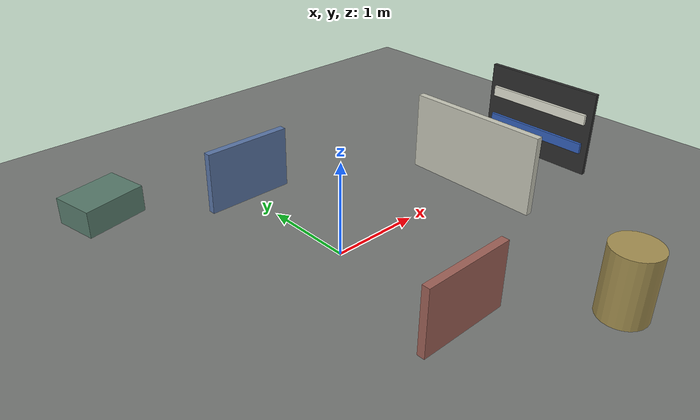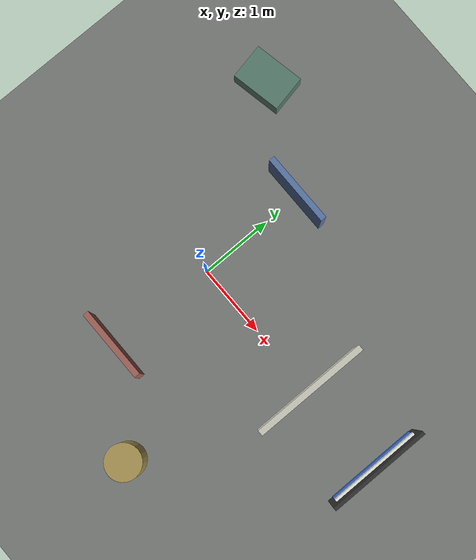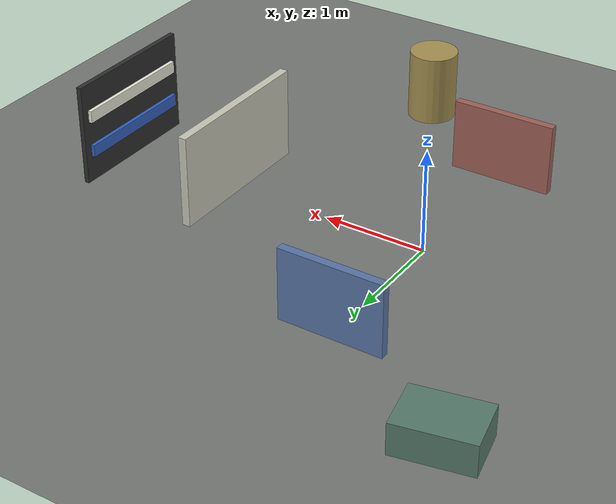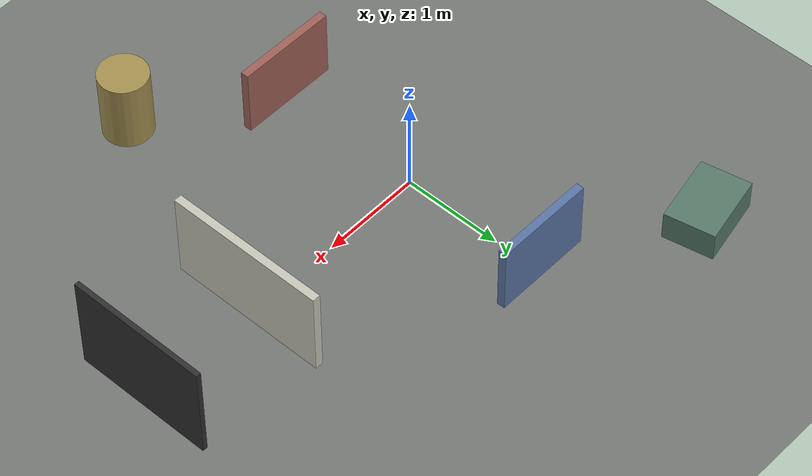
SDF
<?xml version="1.0"?>
<sdf version="1.9">
  <world name="brover_e5_sensor_test_world">
    <plugin filename="gz-sim-physics-system" name="gz::sim::systems::Physics"/>
    <plugin filename="gz-sim-user-commands-system" name="gz::sim::systems::UserCommands"/>
    <plugin filename="gz-sim-scene-broadcaster-system" name="gz::sim::systems::SceneBroadcaster"/>
    <plugin filename="gz-sim-sensors-system" name="gz::sim::systems::Sensors">
      <render_engine>ogre2</render_engine>
    </plugin>

    <gravity>0 0 -9.81</gravity>
    <atmosphere type="adiabatic"/>
    <scene>
      <ambient>0.35 0.35 0.35 1</ambient>
      <background>0.68 0.71 0.74 1</background>
      <shadows>true</shadows>
    </scene>

    <light name="sun" type="directional">
      <cast_shadows>true</cast_shadows>
      <pose>0 0 10 0 0 0</pose>
      <diffuse>0.95 0.95 0.90 1</diffuse>
      <specular>0.10 0.10 0.10 1</specular>
      <direction>-0.45 0.20 -0.86</direction>
    </light>

    <model name="ground_plane">
      <static>true</static>
      <link name="link">
        <collision name="collision">
          <geometry>
            <plane>
              <normal>0 0 1</normal>
              <size>10 8</size>
            </plane>
          </geometry>
          <surface>
            <friction>
              <ode>
                <mu>1.0</mu>
                <mu2>1.0</mu2>
              </ode>
            </friction>
          </surface>
        </collision>
        <visual name="visual">
          <geometry>
            <plane>
              <normal>0 0 1</normal>
              <size>10 8</size>
            </plane>
          </geometry>
          <material>
            <ambient>0.46 0.47 0.46 1</ambient>
            <diffuse>0.46 0.47 0.46 1</diffuse>
            <specular>0.02 0.02 0.02 1</specular>
          </material>
        </visual>
      </link>
    </model>

    <model name="front_range_panel_2m">
      <static>true</static>
      <pose>2.0 0 0.45 0 0 0</pose>
      <link name="link">
        <collision name="collision"><geometry><box><size>0.08 1.6 0.9</size></box></geometry></collision>
        <visual name="visual">
          <geometry><box><size>0.08 1.6 0.9</size></box></geometry>
          <material><diffuse>0.78 0.78 0.72 1</diffuse></material>
        </visual>
      </link>
    </model>

    <model name="left_range_panel">
      <static>true</static>
      <pose>0 1.5 0.35 0 0 0</pose>
      <link name="link">
        <collision name="collision"><geometry><box><size>1.0 0.08 0.7</size></box></geometry></collision>
        <visual name="visual">
          <geometry><box><size>1.0 0.08 0.7</size></box></geometry>
          <material><diffuse>0.35 0.46 0.65 1</diffuse></material>
        </visual>
      </link>
    </model>

    <model name="right_range_panel">
      <static>true</static>
      <pose>0 -1.5 0.35 0 0 0</pose>
      <link name="link">
        <collision name="collision"><geometry><box><size>1.0 0.08 0.7</size></box></geometry></collision>
        <visual name="visual">
          <geometry><box><size>1.0 0.08 0.7</size></box></geometry>
          <material><diffuse>0.62 0.38 0.34 1</diffuse></material>
        </visual>
      </link>
    </model>

    <model name="camera_center_target">
      <static>true</static>
      <pose>3.25 0 0.50 0 0 0</pose>
      <link name="link">
        <visual name="target_back">
          <geometry><box><size>0.05 1.4 1.0</size></box></geometry>
          <material><diffuse>0.18 0.18 0.18 1</diffuse></material>
        </visual>
        <visual name="target_white_bar">
          <pose>-0.03 0 0.18 0 0 0</pose>
          <geometry><box><size>0.06 1.25 0.12</size></box></geometry>
          <material><diffuse>0.90 0.90 0.84 1</diffuse></material>
        </visual>
        <visual name="target_blue_bar">
          <pose>-0.03 0 -0.18 0 0 0</pose>
          <geometry><box><size>0.06 1.25 0.12</size></box></geometry>
          <material><diffuse>0.20 0.38 0.74 1</diffuse></material>
        </visual>
      </link>
    </model>

    <model name="round_lidar_target">
      <static>true</static>
      <pose>1.2 -2.3 0.35 0 0 0</pose>
      <link name="link">
        <collision name="collision"><geometry><cylinder><radius>0.24</radius><length>0.70</length></cylinder></geometry></collision>
        <visual name="visual">
          <geometry><cylinder><radius>0.24</radius><length>0.70</length></cylinder></geometry>
          <material><diffuse>0.65 0.57 0.32 1</diffuse></material>
        </visual>
      </link>
    </model>

    <model name="low_box_target">
      <static>true</static>
      <pose>-1.4 2.2 0.15 0 0 0.2</pose>
      <link name="link">
        <collision name="collision"><geometry><box><size>0.7 0.5 0.30</size></box></geometry></collision>
        <visual name="visual">
          <geometry><box><size>0.7 0.5 0.30</size></box></geometry>
          <material><diffuse>0.34 0.48 0.42 1</diffuse></material>
        </visual>
      </link>
    </model>
  </world>
</sdf>
